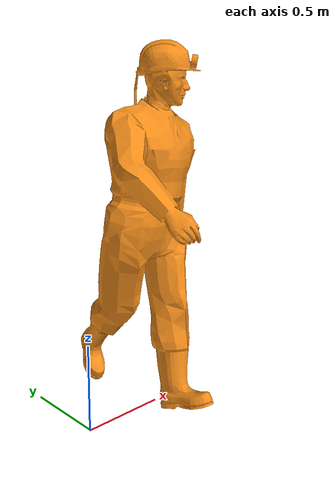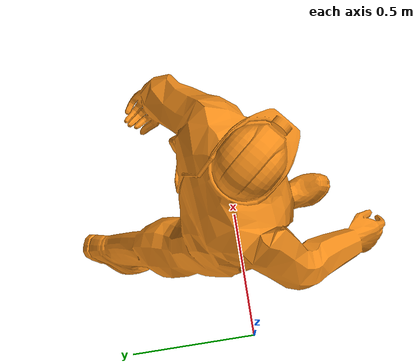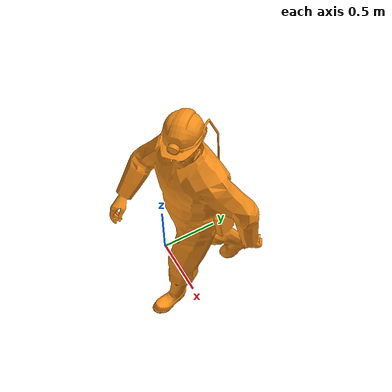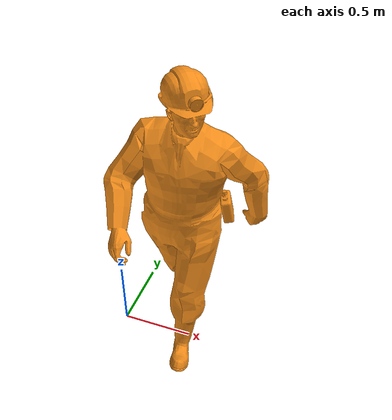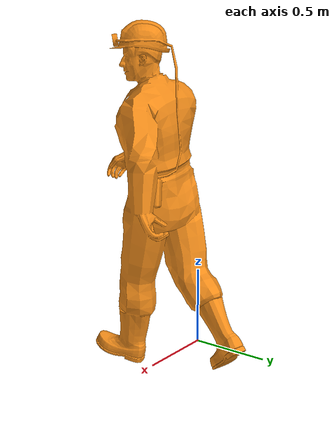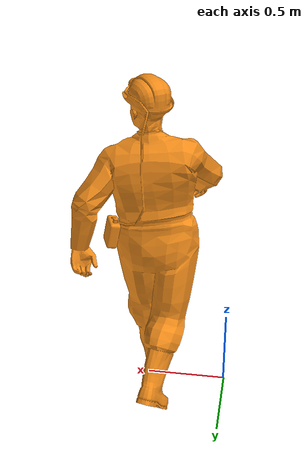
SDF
<?xml version='1.0'?>
<sdf version="1.7">
  <model name="worker">
    <static>true</static>
    <link name="worker_link">
      <collision name="worker_collision">
        <geometry>
          <mesh>
            <uri>/home/brayan/catkin_ws/src/rockbreaker_arm_simulator/rockbreaker_arm_gazebo/models/MineWorker/MineWorker.dae</uri>
          </mesh>
        </geometry>
      </collision>
      <visual name="worker_visual">
        <geometry>
          <mesh>
            <uri>/home/brayan/catkin_ws/src/rockbreaker_arm_simulator/rockbreaker_arm_gazebo/models/MineWorker/MineWorker.dae</uri>
          </mesh>
         </geometry>
         <material>|
          <script>
            <uri>file://media/materials/scripts/gazebo.material</uri>
            <name>Gazebo/Orange</name>
          </script>
        </material>
       </visual>
    </link>
  </model>
</sdf>
